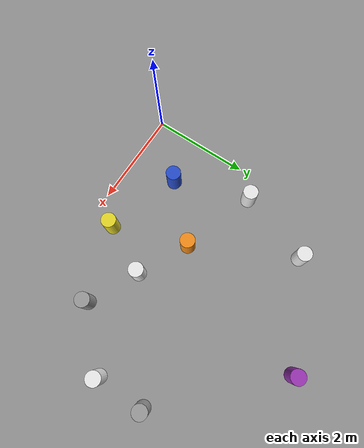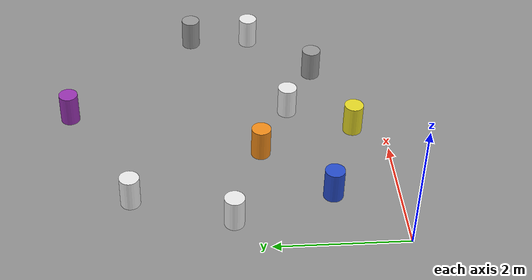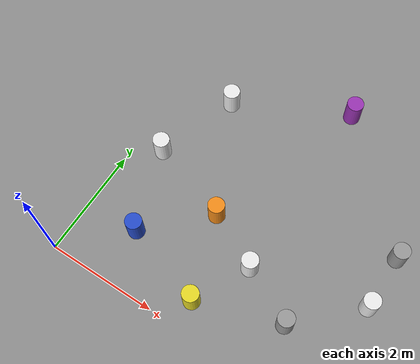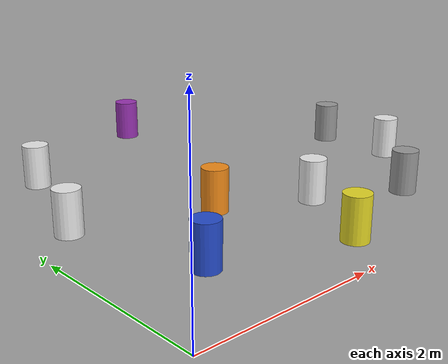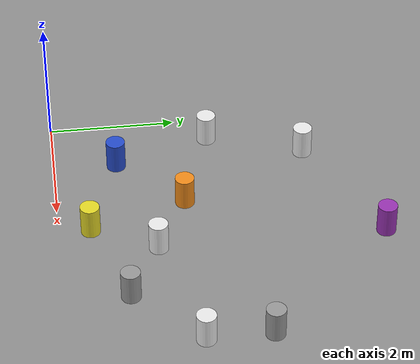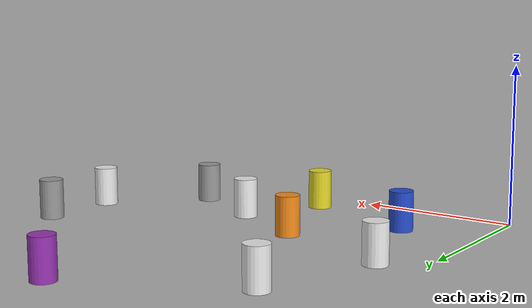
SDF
<?xml version='1.0'?>
<sdf version='1.6'>
  <model name='obstacles'>
    <pose frame=''>0 0 0 0 0 0</pose>
    <link name='obstacle'>
      <collision name='obstacle_1'>
        <pose>5.0 3.0 0.25 0 0 0</pose>
        <geometry>
          <cylinder>
            <radius>0.15</radius>
            <length>0.5</length>
          </cylinder>
        </geometry>
        <max_contacts>10</max_contacts>
        <surface>
          <bounce/>
          <friction>
            <ode/>
          </friction>
          <contact>
            <ode/>
          </contact>
        </surface>
      </collision>

      <visual name='obstacle_1'>
        <pose>5.0 3.0 0.25 0 0 0</pose>
        <geometry>
          <cylinder>
            <radius>0.15</radius>
            <length>0.5</length>
          </cylinder>
        </geometry>
        <material>
          <script>
            <uri>file://media/materials/scripts/gazebo.material</uri>
            <name>Gazebo/Grey</name>
          </script>
        </material>
      </visual>

      <collision name='obstacle_2'>
        <pose>1.0 1.0 0.25 0 0 0</pose>
        <geometry>
          <cylinder>
            <radius>0.15</radius>
            <length>0.5</length>
          </cylinder>
        </geometry>
        <max_contacts>10</max_contacts>
        <surface>
          <bounce/>
          <friction>
            <ode/>
          </friction>
          <contact>
            <ode/>
          </contact>
        </surface>
      </collision>

      <visual name='obstacle_2'>
        <pose>1.0 1.0 0.25 0 0 0</pose>
        <geometry>
          <cylinder>
            <radius>0.15</radius>
            <length>0.5</length>
          </cylinder>
        </geometry>
        <material>
          <script>
            <uri>file://media/materials/scripts/gazebo.material</uri>
            <name>Gazebo/Blue</name>
          </script>
        </material>
      </visual>

     <collision name='obstacle_3'>
        <pose>2.0 2.0 0.25 0 0 0</pose>
        <geometry>
          <cylinder>
            <radius>0.15</radius>
            <length>0.5</length>
          </cylinder>
        </geometry>
        <max_contacts>10</max_contacts>
        <surface>
          <bounce/>
          <friction>
            <ode/>
          </friction>
          <contact>
            <ode/>
          </contact>
        </surface>
      </collision>

      <visual name='obstacle_3'>
        <pose>2.0 2.0 0.25 0 0 0</pose>
        <geometry>
          <cylinder>
            <radius>0.15</radius>
            <length>0.5</length>
          </cylinder>
        </geometry>
        <material>
          <script>
            <uri>file://media/materials/scripts/gazebo.material</uri>
            <name>Gazebo/Orange</name>
          </script>
        </material>
      </visual>

      <collision name='obstacle_4'>
        <pose>2.5 0.5 0.25 0 0 0</pose>
        <geometry>
          <cylinder>
            <radius>0.15</radius>
            <length>0.5</length>
          </cylinder>
        </geometry>
        <max_contacts>10</max_contacts>
        <surface>
          <bounce/>
          <friction>
            <ode/>
          </friction>
          <contact>
            <ode/>
          </contact>
        </surface>
      </collision>

      <visual name='obstacle_4'>
        <pose>2.5 0.5 0.25 0 0 0</pose>
        <geometry>
          <cylinder>
            <radius>0.15</radius>
            <length>0.5</length>
          </cylinder>
        </geometry>
        <material>
          <script>
            <uri>file://media/materials/scripts/gazebo.material</uri>
            <name>Gazebo/Yellow</name>
          </script>
        </material>
      </visual>

      <collision name='obstacle_5'>
        <pose>0.5 2.5 0.25 0 0 0</pose>
        <geometry>
          <cylinder>
            <radius>0.15</radius>
            <length>0.5</length>
          </cylinder>
        </geometry>
        <max_contacts>10</max_contacts>
        <surface>
          <bounce/>
          <friction>
            <ode/>
          </friction>
          <contact>
            <ode/>
          </contact>
        </surface>
      </collision>

      <visual name='obstacle_5'>
        <pose>0.5 2.5 0.25 0 0 0</pose>
        <geometry>
          <cylinder>
            <radius>0.15</radius>
            <length>0.5</length>
          </cylinder>
        </geometry>
        <material>
          <script>
            <uri>file://media/materials/scripts/gazebo.material</uri>
            <name>Gazebo/White</name>
          </script>
        </material>
      </visual>

      <collision name='obstacle_6'>
        <pose>1.0 4.0 0.25 0 0 0</pose>
        <geometry>
          <cylinder>
            <radius>0.15</radius>
            <length>0.5</length>
          </cylinder>
        </geometry>
        <max_contacts>10</max_contacts>
        <surface>
          <bounce/>
          <friction>
            <ode/>
          </friction>
          <contact>
            <ode/>
          </contact>
        </surface>
      </collision>

      <visual name='obstacle_6'>
        <pose>1.0 4.0 0.25 0 0 0</pose>
        <geometry>
          <cylinder>
            <radius>0.15</radius>
            <length>0.5</length>
          </cylinder>
        </geometry>
        <material>
          <script>
            <uri>file://media/materials/scripts/gazebo.material</uri>
            <name>Gazebo/White</name>
          </script>
        </material>
      </visual>

      <collision name='obstacle_7'>
        <pose>4.0 1.0 0.25 0 0 0</pose>
        <geometry>
          <cylinder>
            <radius>0.15</radius>
            <length>0.5</length>
          </cylinder>
        </geometry>
        <max_contacts>10</max_contacts>
        <surface>
          <bounce/>
          <friction>
            <ode/>
          </friction>
          <contact>
            <ode/>
          </contact>
        </surface>
      </collision>

      <visual name='obstacle_7'>
        <pose>4.0 1.0 0.25 0 0 0</pose>
        <geometry>
          <cylinder>
            <radius>0.15</radius>
            <length>0.5</length>
          </cylinder>
        </geometry>
        <material>
          <script>
            <uri>file://media/materials/scripts/gazebo.material</uri>
            <name>Gazebo/Grey</name>
          </script>
        </material>
      </visual>

    <collision name='obstacle_8'>
        <pose>3.0 5.0 0.25 0 0 0</pose>
        <geometry>
          <cylinder>
            <radius>0.15</radius>
            <length>0.5</length>
          </cylinder>
        </geometry>
        <max_contacts>10</max_contacts>
        <surface>
          <bounce/>
          <friction>
            <ode/>
          </friction>
          <contact>
            <ode/>
          </contact>
        </surface>
      </collision>

      <visual name='obstacle_8'>
        <pose>3.0 5.0 0.25 0 0 0</pose>
        <geometry>
          <cylinder>
            <radius>0.15</radius>
            <length>0.5</length>
          </cylinder>
        </geometry>
        <material>
          <script>
            <uri>file://media/materials/scripts/gazebo.material</uri>
            <name>Gazebo/Purple</name>
          </script>
        </material>
      </visual>

      <collision name='obstacle_9'>
        <pose>3.0 1.5 0.25 0 0 0</pose>
        <geometry>
          <cylinder>
            <radius>0.15</radius>
            <length>0.5</length>
          </cylinder>
        </geometry>
        <max_contacts>10</max_contacts>
        <surface>
          <bounce/>
          <friction>
            <ode/>
          </friction>
          <contact>
            <ode/>
          </contact>
        </surface>
      </collision>

      <visual name='obstacle_9'>
        <pose>3.0 1.5 0.25 0 0 0</pose>
        <geometry>
          <cylinder>
            <radius>0.15</radius>
            <length>0.5</length>
          </cylinder>
        </geometry>
        <material>
          <script>
            <uri>file://media/materials/scripts/gazebo.material</uri>
            <name>Gazebo/White</name>
          </script>
        </material>
      </visual>

            <collision name='obstacle_10'>
        <pose>5.0 2.0 0.25 0 0 0</pose>
        <geometry>
          <cylinder>
            <radius>0.15</radius>
            <length>0.5</length>
          </cylinder>
        </geometry>
        <max_contacts>10</max_contacts>
        <surface>
          <bounce/>
          <friction>
            <ode/>
          </friction>
          <contact>
            <ode/>
          </contact>
        </surface>
      </collision>

      <visual name='obstacle_10'>
        <pose>5.0 2.0 0.25 0 0 0</pose>
        <geometry>
          <cylinder>
            <radius>0.15</radius>
            <length>0.5</length>
          </cylinder>
        </geometry>
        <material>
          <script>
            <uri>file://media/materials/scripts/gazebo.material</uri>
            <name>Gazebo/White</name>
          </script>
        </material>
      </visual>

    </link>
    <static>1</static>

  </model>
</sdf>
